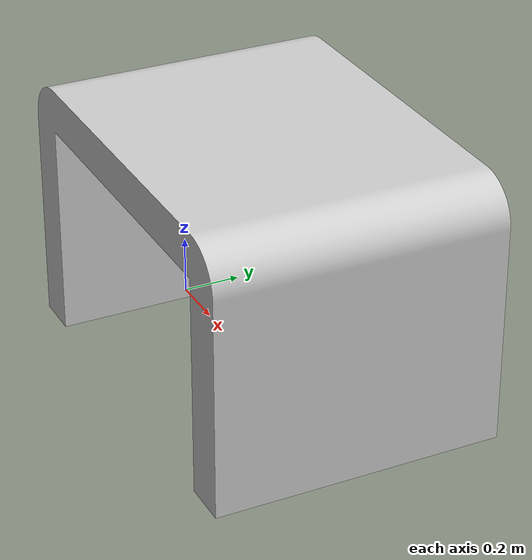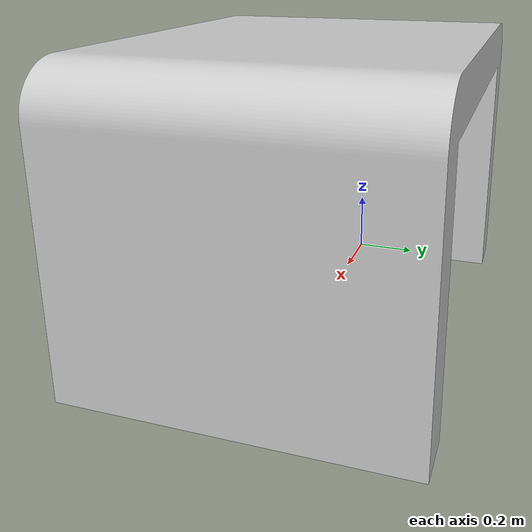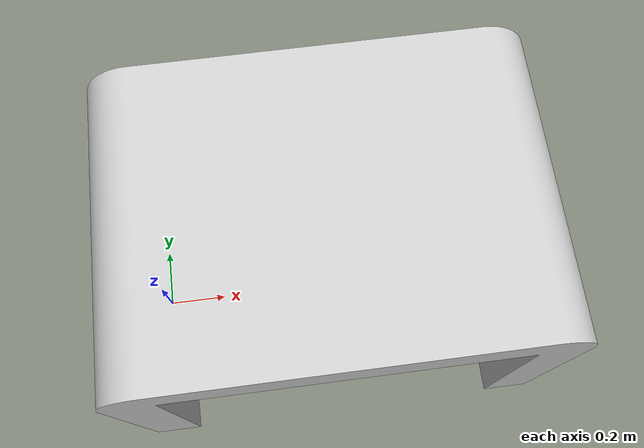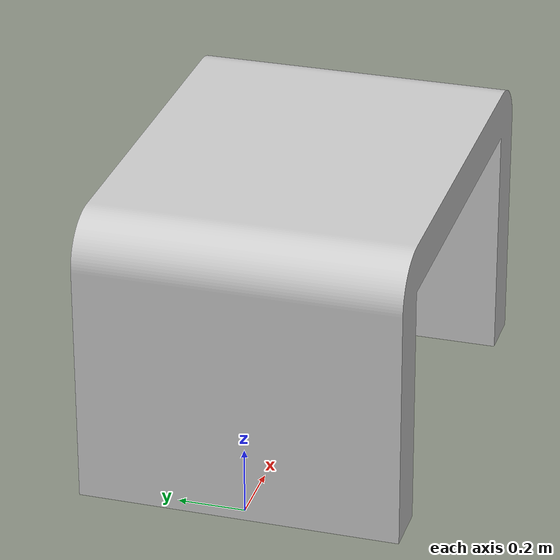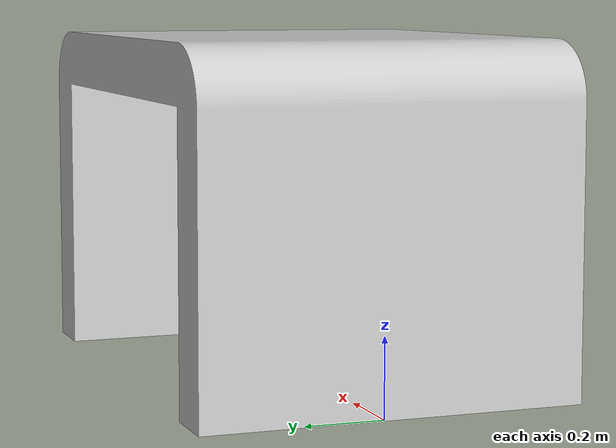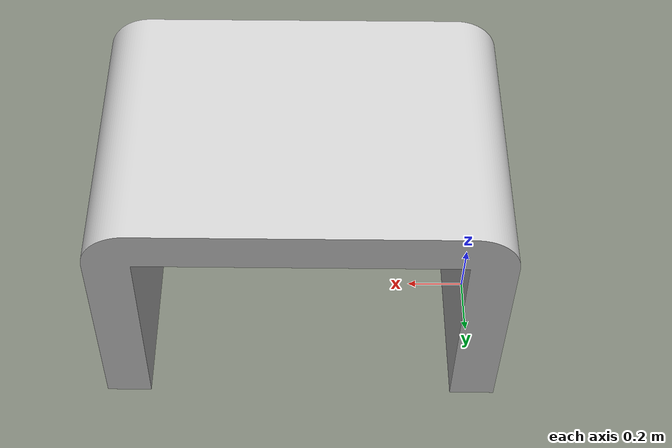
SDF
<?xml version="1.0" ?>
<sdf version="1.6">
  <model name="weirdtable">
    <static>true</static>
    <link name="link">
      <collision name="collision">
        <geometry>
          <mesh>
            <scale>0.06 0.06 0.06</scale>
            <uri>model://weirdtable/meshes/weirdtable.dae</uri>
          </mesh>
        </geometry>
      </collision>
      <visual name="visual">
        <geometry>
          <mesh>
            <scale>0.06 0.06 0.06</scale>
            <uri>model://weirdtable/meshes/weirdtable.dae</uri>
          </mesh>
        </geometry>
       <material>
         <script>
           <uri>model://flipchart/materials/scripts</uri>
           <uri>model://flipchart/materials/textures</uri>
           <name>FlipChart/Diffuse</name>
         </script>
       </material>
      </visual>
    </link>
  </model>
</sdf>
